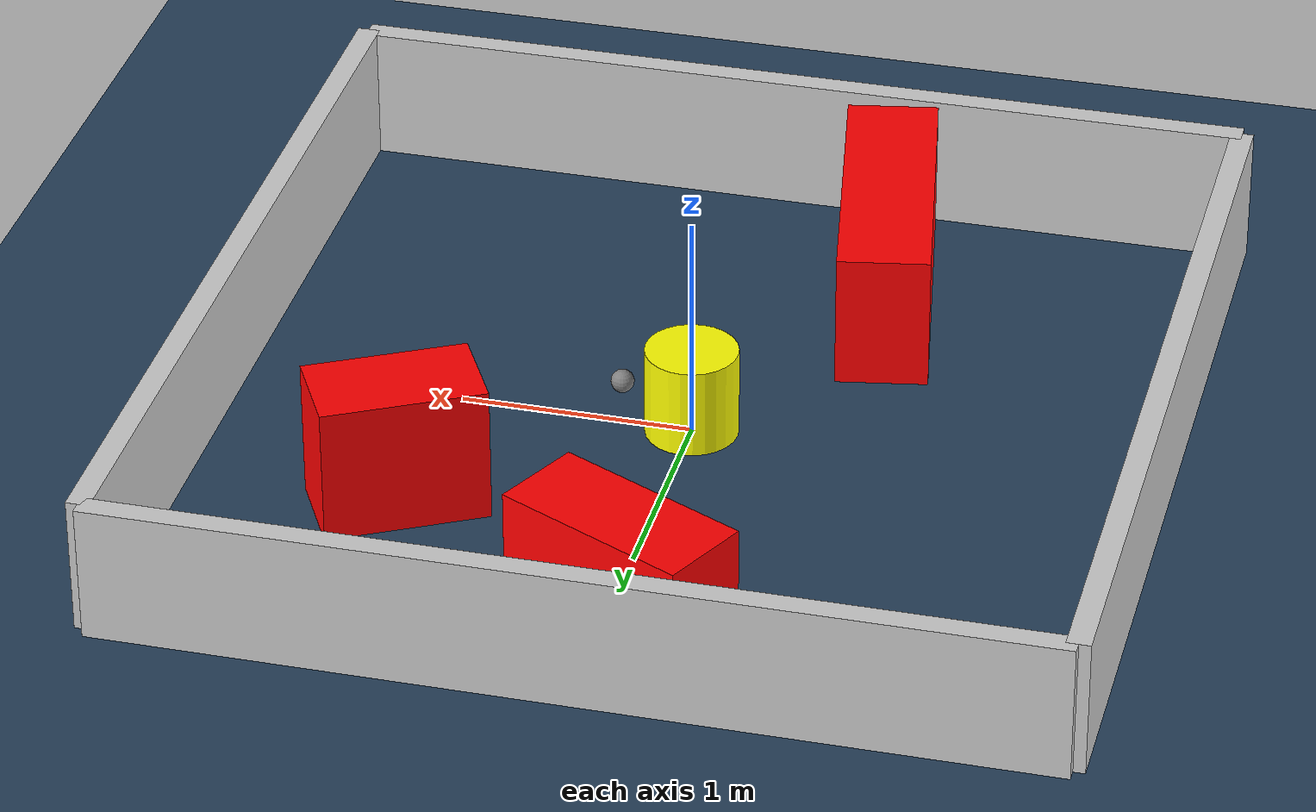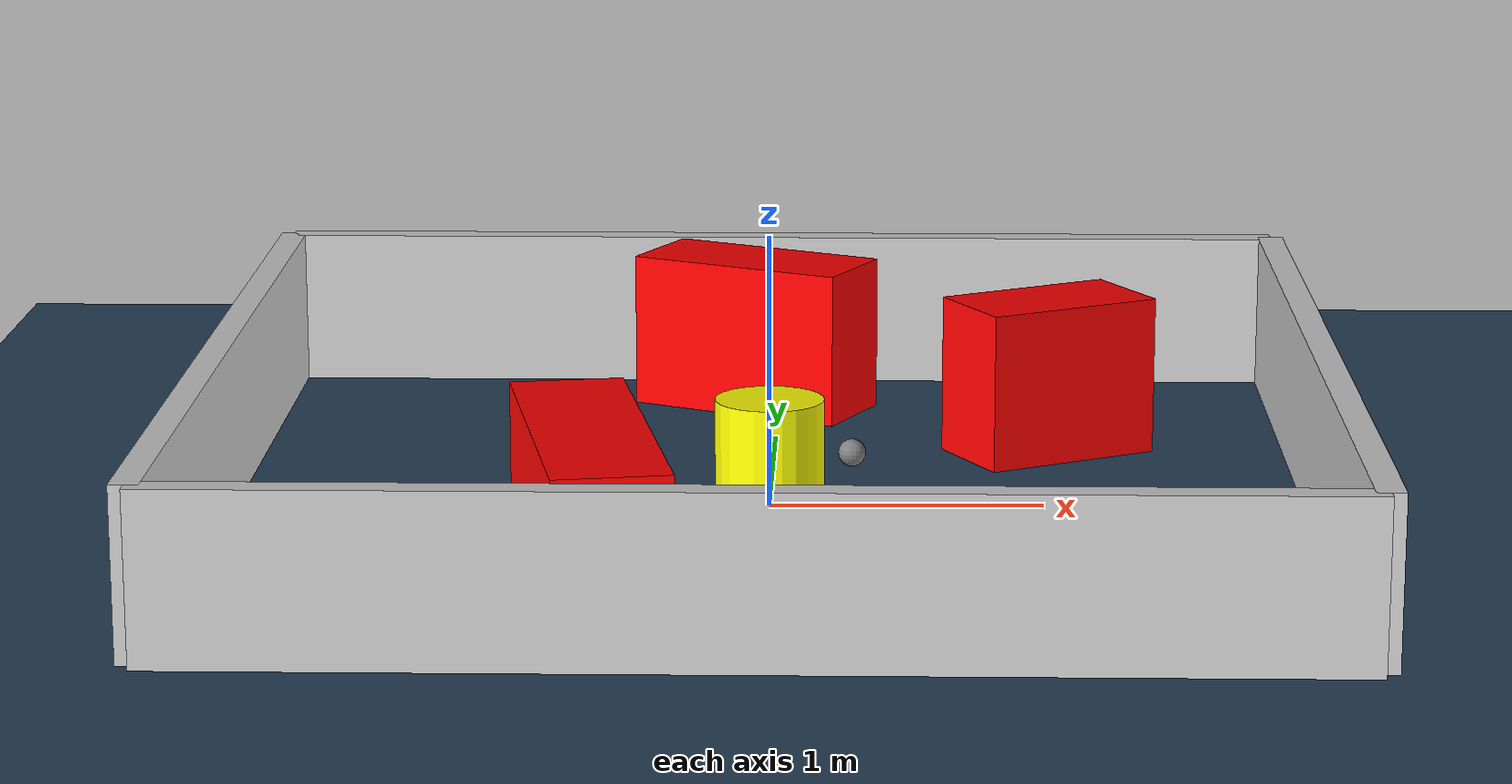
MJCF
<?xml version="1.0" ?>
<mujoco model="generated_environment">
  <option timestep="0.01" integrator="RK4" cone="elliptic"/>
  <default>
    <geom density="1"/>
  </default>
  <asset>
    <texture builtin="gradient" height="3072" rgb1="0.3 0.5 0.7" rgb2="0 0 0" type="skybox" width="512"/>
    <texture builtin="checker" height="300" mark="edge" markrgb="0.8 0.8 0.8" name="groundplane" rgb1="0.2 0.3 0.4" rgb2="0.1 0.2 0.3" type="2d" width="300"/>
    <material name="groundplane" reflectance="0.2" texrepeat="5 5" texture="groundplane" texuniform="true"/>
    <material name="robot" rgba="0.0 1.0 0.0 1"/>
  </asset>
  <worldbody>
    <light dir="0 0 -1" directional="true" pos="0 0 1.5"/>
    <geom condim="4" friction="1.0 0.005 0.001" material="groundplane" name="floor" size="0 0 0.05" type="plane"/>
    <body name="walls">
      <geom name="wall_1" condim="4" pos="-2.0 0.0 0.3" rgba="0.800000011920929 0.800000011920929 0.800000011920929 1.0" size="0.05 2.0 0.3" type="box"/>
      <geom name="wall_2" condim="4" pos="2.0 0.0 0.3" rgba="0.800000011920929 0.800000011920929 0.800000011920929 1.0" size="0.05 2.0 0.3" type="box"/>
      <geom name="wall_3" condim="4" pos="0.0 -2.0 0.3" rgba="0.800000011920929 0.800000011920929 0.800000011920929 1.0" size="2.0 0.05 0.3" type="box"/>
      <geom name="wall_4" condim="4" pos="0.0 2.0 0.3" rgba="0.800000011920929 0.800000011920929 0.800000011920929 1.0" size="2.0 0.05 0.3" type="box"/>
    </body>
    <body name="robot">
      <joint name="joint_x" type="slide" pos="0 0 0" axis="1 0 0"/>
      <joint name="joint_y" type="slide" pos="0 0 0" axis="0 1 0"/>
      <geom name="robot" type="sphere" pos="0.3 0.0 0.2" size="0.05" mass="5." friction="1.0 0.005 0.0001" condim="4" rgba="0.5 0.5 0.5 1.0"/>
      <site name="sensor_ball"/>
    </body>
    <body name="obstacle_movable_1">
      <geom name="obstacle_movable_1" condim="4" pos="0.0 0.0 0.2" euler="0 0 0.0" friction="1.0 0.005 0.001" rgba="1.0 1.0 0.0 1.0" size="0.2 0.2 0.0" type="cylinder" mass="0.1"/>
      <joint type="free"/>
    </body>
    <body name="obstacle_2_static">
      <geom name="obstacle_2_static" condim="4" pos="-0.5789546232399283 -1.212141357324707 0.3" euler="0 0 100.27401936187711" friction="1.0 0.005 0.001" rgba="1 0 0 1" size="0.6722407304233124 0.2 0.3" type="box"/>
    </body>
    <body name="obstacle_3_static">
      <geom name="obstacle_3_static" condim="4" pos="1.047863778632607 0.8250156252109873 0.3" euler="0 0 208.46394227531331" friction="1.0 0.005 0.001" rgba="1 0 0 1" size="0.35138904006292937 0.2 0.3" type="box"/>
    </body>
    <body name="obstacle_4_static">
      <geom name="obstacle_4_static" condim="4" pos="-0.08984627667182532 1.548295758396055 0.3" euler="0 0 333.9049607835503" friction="1.0 0.005 0.001" rgba="1 0 0 1" size="0.43986569646261775 0.2 0.3" type="box"/>
    </body>
  </worldbody>
  <actuator>
    <motor name="actuator_x" joint="joint_x" gear="1" ctrlrange="-1 1"/>
    <motor name="actuator_y" joint="joint_y" gear="1" ctrlrange="-1 1"/>
  </actuator>
</mujoco>
